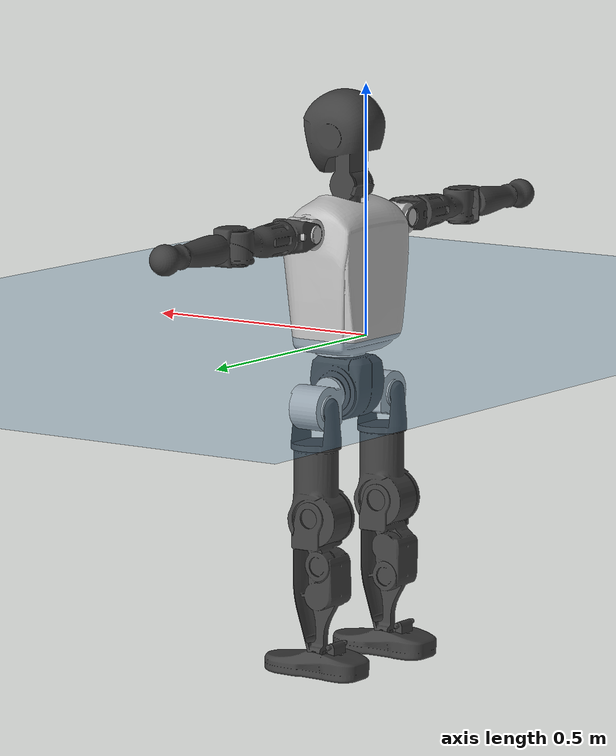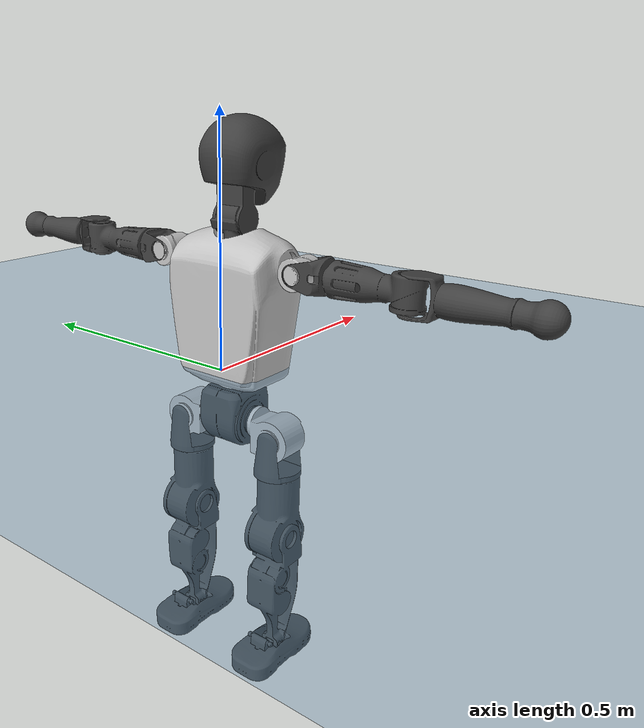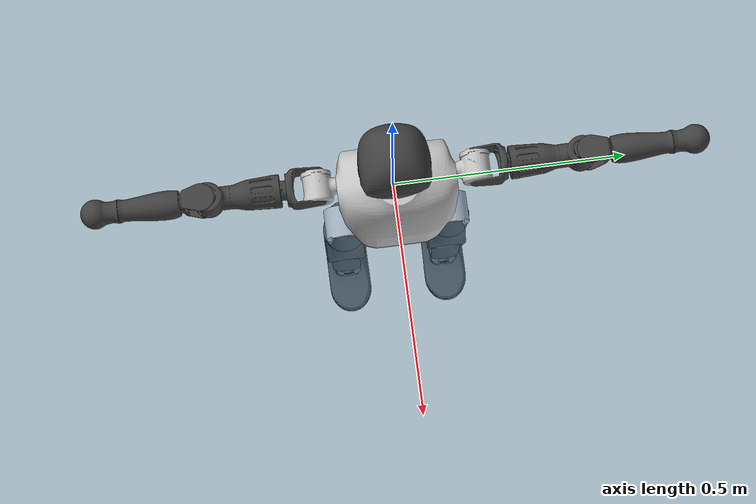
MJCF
<mujoco model="T1">
  <compiler angle="radian" assetdir="assets" balanceinertia="true" inertiafromgeom="false"/>

  <option timestep="0.005" density="1.2" viscosity="2e-05"/>

  <size nkey="1"/>

  <visual>
    <quality shadowsize="8192"/>
    <map shadowclip="0.5"/>
  </visual>

  <default>
    <default class="/">
      <joint armature="0.01" damping="0.01" frictionloss="0.1"/>
      <geom contype="0" conaffinity="0" group="1" solref="-1000 -80"/>
      <site size="0.01 0.005 0.005" group="5"/>
      <general forcelimited="true" biastype="affine" gainprm="25" biasprm="0 -25 -0.6"/>
      <default class="t1">
        <geom rgba="0.25 0.25 0.25 1"/>
        <default class="visual">
          <geom type="mesh" group="2"/>
        </default>
        <default class="collision">
          <geom group="3"/>
        </default>
        <default class="foot">
          <geom size="0.1115 0.05 0.015" type="box" condim="6" group="4" priority="1" solimp="0.015 1 0.015"/>
        </default>
        <default class="reward_collision_sphere">
          <geom group="5" rgba="1 0 0 1"/>
        </default>
      </default>
    </default>
  </default>

  <asset>
    <texture type="skybox" colorspace="auto" name="//unnamed_texture_0" builtin="gradient" rgb1="0.95 0.95 0.95" rgb2="0.95 0.95 0.95" width="100" height="600"/>
    <texture type="2d" colorspace="auto" name="texplane" builtin="checker" rgb1="0.345 0.575 0.748" rgb2="0.345 0.575 0.748" markrgb="1 1 1" width="512" height="512"/>
    <material name="MatPlane" class="/" texture="texplane" texuniform="true" texrepeat="2 2" specular="0.9"/>
    <mesh name="Trunk" class="/" file="Trunk.stl"/>
    <mesh name="H1" class="/" file="H1.stl"/>
    <mesh name="H2" class="/" file="H2.stl"/>
    <mesh name="AL1" class="/" file="AL1.stl"/>
    <mesh name="AL2" class="/" file="AL2.stl"/>
    <mesh name="AL3" class="/" file="AL3.stl"/>
    <mesh name="left_hand_link" class="/" file="left_hand_link.stl"/>
    <mesh name="AR1" class="/" file="AR1.stl"/>
    <mesh name="AR2" class="/" file="AR2.stl"/>
    <mesh name="AR3" class="/" file="AR3.stl"/>
    <mesh name="right_hand_link" class="/" file="right_hand_link.stl"/>
    <mesh name="Waist" class="/" file="Waist.stl"/>
    <mesh name="Hip_Pitch_Left" class="/" file="Hip_Pitch_Left.stl"/>
    <mesh name="Hip_Roll_Left" class="/" file="Hip_Roll_Left.stl"/>
    <mesh name="Hip_Yaw_Left" class="/" file="Hip_Yaw_Left.stl"/>
    <mesh name="Shank_Left" class="/" file="Shank_Left.stl"/>
    <mesh name="Ankle_Cross_Left" class="/" file="Ankle_Cross_Left.stl"/>
    <mesh name="left_foot_link" class="/" file="left_foot_link.stl"/>
    <mesh name="Hip_Pitch_Right" class="/" file="Hip_Pitch_Right.stl"/>
    <mesh name="Hip_Roll_Right" class="/" file="Hip_Roll_Right.stl"/>
    <mesh name="Hip_Yaw_Right" class="/" file="Hip_Yaw_Right.stl"/>
    <mesh name="Shank_Right" class="/" file="Shank_Right.stl"/>
    <mesh name="Ankle_Cross_Right" class="/" file="Ankle_Cross_Right.stl"/>
    <mesh name="right_foot_link" class="/" file="right_foot_link.stl"/>
  </asset>

  <worldbody>
    <geom name="floor" class="/" size="100 100 0.125" type="plane" group="0" material="MatPlane"/>
    <light name="toplight_shadow" class="/" pos="0 0 5" dir="0.0990148 0.0990148 -0.990148" type="directional" ambient="0.04 0.04 0.04" diffuse="0.55 0.55 0.55" specular="0.12 0.12 0.12"/>
    <light name="toplight_fill" class="/" pos="0 0 5" dir="0.0990148 0.0990148 -0.990148" type="directional" castshadow="false" ambient="0.04 0.04 0.04" diffuse="0.3 0.3 0.3" specular="0.08 0.08 0.08"/>
    <body name="trunk" childclass="t1" pos="-0.0020705 0.000997553 0.00131351" quat="1 4.60105e-05 -0.000318049 0.000372986">
      <inertial pos="0.03829 -0.00294107 0.105217" quat="0.999799 0.00283526 -0.0195221 -0.00365328" mass="9.94522" diaginertia="0.0161563 0.124438 0.0526986"/>
      <joint name="//unnamed_joint_0" type="free" armature="0" damping="0" frictionloss="0"/>
      <geom name="//unnamed_geom_1" class="visual" rgba="0.76 0.76 0.76 1" mesh="Trunk"/>
      <geom name="//unnamed_geom_2" class="collision" size="0.0697446 0.0929928 0.139489" pos="0.0421582 0 0.118018" type="box"/>
      <geom name="//unnamed_geom_3" class="reward_collision_sphere" size="0.106942" pos="0.0421582 0 0.0983484"/>
      <geom name="//unnamed_geom_4" class="reward_collision_sphere" size="0.0139489" pos="0.0421582 0.0938115 0"/>
      <geom name="//unnamed_geom_5" class="reward_collision_sphere" size="0.0139489" pos="0.0421582 -0.0938115 0"/>
      <geom name="//unnamed_geom_6" class="reward_collision_sphere" size="0.0139489" pos="0.0421582 0.118092 0.177027"/>
      <geom name="//unnamed_geom_7" class="reward_collision_sphere" size="0.0139489" pos="0.0421582 -0.118092 0.177027"/>
      <site name="imu" pos="-0.0029039 0.011129 0.00140429" size="0.00929928"/>
      <camera name="track" pos="0 -2.20733 0" quat="0.707107 0.707107 0 0" mode="trackcom"/>
      <camera name="ego_camera" pos="0.0857216 0 0.413063" quat="-0.5 -0.5 0.5 0.5"/>
      <body name="H1" pos="0.0425005 -0.00246816 0.236979" quat="1 0.000340708 -0.000506971 -0.000229715">
        <inertial pos="0.00054844 -0.00138537 0.0573299" quat="0.775598 -0.0225307 0.00757096 0.63078" mass="0.363958" diaginertia="4.39143e-05 0.000377791 0.000140636"/>
        <joint name="AAHead_yaw" pos="0 0 0" axis="0.00488077 0.0107458 0.99993" range="-1.57859 1.61685" armature="0.00982158" damping="0.0141767" frictionloss="0.0931341"/>
        <geom name="//unnamed_geom_8" class="visual" mesh="H1"/>
        <body name="H2" pos="-0.00181099 -0.00250579 0.0591427" quat="1 -0.000224528 0.000290052 -0.000781887">
          <inertial pos="0.00572788 0.00463376 0.0978888" quat="0.989504 0.0944462 -0.0728424 -0.0815862" mass="0.5124" diaginertia="0.000354352 0.00335088 0.00161167"/>
          <joint name="Head_pitch" pos="0 0 0" axis="-0.00200392 -0.999992 -0.00339318" range="-1.26761 0.381073" armature="0.0103731" damping="0.00111012" frictionloss="0.0824941"/>
          <geom name="//unnamed_geom_9" class="visual" mesh="H2"/>
          <geom name="//unnamed_geom_10" class="collision" size="0.0743943" pos="0.00702636 0 0.108183"/>
          <geom name="//unnamed_geom_11" class="reward_collision_sphere" size="0.0836935" pos="0.0140527 0 0.0983484"/>
        </body>
      </body>
      <body name="AL1" pos="0.0397227 0.116864 0.217896" quat="0.999999 -0.00118838 -0.000200767 0.000390628">
        <inertial pos="0.00111877 0.0519434 0.00337459" quat="0.496233 0.507357 -0.503158 0.493126" mass="0.399255" diaginertia="0.000219869 0.00195642 0.0002456"/>
        <joint name="Left_Shoulder_Pitch" pos="0 0 0" axis="0.000960133 0.999959 -0.00896814" stiffness="0.00855103" range="-3.31839 1.18023" armature="0.00800053" damping="0" frictionloss="0.102275"/>
        <geom name="//unnamed_geom_12" class="visual" rgba="0.76 0.76 0.76 1" mesh="AL1"/>
        <body name="AL2" pos="-0.00082731 0.0529328 0.00117571" quat="0.999997 -0.0017007 0.00151976 0.001132">
          <inertial pos="0.00357295 0.0462887 -0.000568103" quat="0.488277 0.510258 -0.488482 0.512453" mass="0.130971" diaginertia="6.79904e-05 0.000555101 0.000165179"/>
          <joint name="Left_Shoulder_Roll" pos="0 0 0" axis="-0.999784 -0.0179737 0.0104232" stiffness="0.0206723" range="-1.62429 1.6916" armature="0.00824258" damping="0.0263971" frictionloss="0.0821089"/>
          <geom name="//unnamed_geom_13" class="visual" mesh="AL2"/>
          <body name="AL3" pos="0.000489821 0.0627218 -0.00140754" quat="0.999999 0.000784307 0.000396373 0.00121955">
            <inertial pos="-5.71427e-05 0.0956338 -0.00261539" quat="0.707472 0.706722 0.00495739 -0.00174336" mass="0.758505" diaginertia="0.00215522 0.0201458 0.000588483"/>
            <joint name="Left_Elbow_Pitch" pos="0 0 0" axis="-0.00476158 -0.999987 -0.00187221" stiffness="0.00607014" range="-2.36116 2.34139" armature="0.00794567" damping="0.0189046" frictionloss="0.0905623"/>
            <geom name="//unnamed_geom_14" class="visual" mesh="AL3"/>
            <geom name="//unnamed_geom_15" class="collision" size="0.0278978 0.0697446" pos="0 0.0551832 0" quat="0.707105 0.707108 0 0" type="cylinder"/>
            <geom name="//unnamed_geom_16" class="reward_collision_sphere" size="0.0334774"/>
            <body name="left_hand_link" pos="0.00177277 0.163576 0.0034756" quat="1 6.2906e-05 0.000106353 -1.38947e-05">
              <inertial pos="-0.000252789 0.120154 0.00147042" quat="0.705084 0.709068 0.00309659 -0.00835601" mass="0.268431" diaginertia="0.00143465 0.0130134 0.000205139"/>
              <joint name="Left_Elbow_Yaw" pos="0 0 0" axis="0.00371741 -0.00393635 0.999985" range="-2.43664 -0.00549609" armature="0.00811465" damping="0.0117528" frictionloss="0.0975498"/>
              <geom name="//unnamed_geom_17" class="visual" mesh="left_hand_link"/>
              <geom name="//unnamed_geom_18" class="collision" size="0.0278978 0.0813687" pos="0 0.143476 0" quat="0.707105 0.707108 0 0" type="cylinder"/>
              <geom name="//unnamed_geom_19" class="reward_collision_sphere" size="0.0464964"/>
              <geom name="//unnamed_geom_20" class="reward_collision_sphere" size="0.0325475" pos="0 0.121403 0"/>
              <geom name="//unnamed_geom_21" class="reward_collision_sphere" size="0.0325475" pos="0 0.237288 0"/>
            </body>
          </body>
        </body>
      </body>
      <body name="AR1" pos="0.0403121 -0.113894 0.214043" quat="0.999999 -0.000288137 0.00102946 0.000290415">
        <inertial pos="-0.000888002 -0.0472821 -0.00267137" quat="0.503384 0.49588 -0.504421 0.496254" mass="0.425981" diaginertia="0.000243708 0.00213022 0.000275961"/>
        <joint name="Right_Shoulder_Pitch" pos="0 0 0" axis="0.00266602 -0.999986 -0.00463996" stiffness="0.00763435" range="-1.27611 3.31259" armature="0.00897478" damping="0.0182906" frictionloss="0.104644"/>
        <geom name="//unnamed_geom_22" class="visual" rgba="0.76 0.76 0.76 1" mesh="AR1"/>
        <body name="AR2" pos="-0.00291784 -0.0528951 0.0018685" quat="1 -0.000174107 2.58365e-06 -8.86687e-05">
          <inertial pos="0.00183165 -0.0421514 0.00330686" quat="0.51152 0.488505 -0.515558 0.483643" mass="0.135116" diaginertia="7.07356e-05 0.000606432 0.000171294"/>
          <joint name="Right_Shoulder_Roll" pos="0 0 0" axis="-0.999967 0.00192664 0.00787889" range="-1.78799 1.52849" armature="0.0090092" damping="0.0147695" frictionloss="0.0913669"/>
          <geom name="//unnamed_geom_23" class="visual" mesh="AR2"/>
          <body name="AR3" pos="-0.000399168 -0.0682291 -0.00128212" quat="1 0.000478006 0.000635182 -0.00032029">
            <inertial pos="0.0021826 -0.0954312 -0.00197403" quat="0.705614 0.708591 -0.000619076 -0.00293197" mass="0.855658" diaginertia="0.00229419 0.0215514 0.000597199"/>
            <joint name="Right_Elbow_Pitch" pos="0 0 0" axis="-0.00077982 0.999935 -0.0113583" range="-2.25789 2.27561" armature="0.00797442" damping="0.00645724" frictionloss="0.104695"/>
            <geom name="//unnamed_geom_24" class="visual" mesh="AR3"/>
            <geom name="//unnamed_geom_25" class="collision" size="0.0278978 0.0697446" pos="0 -0.0551832 0" quat="0.707105 0.707108 0 0" type="cylinder"/>
            <geom name="//unnamed_geom_26" class="reward_collision_sphere" size="0.0334774"/>
            <body name="right_hand_link" pos="-0.000498688 -0.160287 -0.00297395" quat="1 0.000133297 -0.000215506 -0.000292713">
              <inertial pos="-0.00225082 -0.12184 0.00460469" quat="0.697617 0.716338 0.013081 0.00449454" mass="0.245332" diaginertia="0.00143236 0.0132971 0.000198752"/>
              <joint name="Right_Elbow_Yaw" pos="0 0 0" axis="0.00232633 0.000148986 0.999997" stiffness="0.0138746" range="0.052926 2.36555" armature="0.00830557" damping="0" frictionloss="0.104977"/>
              <geom name="//unnamed_geom_27" class="visual" mesh="right_hand_link"/>
              <geom name="//unnamed_geom_28" class="collision" size="0.0278978 0.0813687" pos="0 -0.143476 0" quat="0.707105 0.707108 0 0" type="cylinder"/>
              <geom name="//unnamed_geom_29" class="reward_collision_sphere" size="0.0464964"/>
              <geom name="//unnamed_geom_30" class="reward_collision_sphere" size="0.0325475" pos="0 -0.121403 0"/>
              <geom name="//unnamed_geom_31" class="reward_collision_sphere" size="0.0325475" pos="0 -0.237288 0"/>
            </body>
          </body>
        </body>
      </body>
      <body name="Waist" pos="0.0460174 0.00104448 -0.11113" quat="1 -0.000849585 -0.000335031 0.00027776">
        <inertial pos="0.00495665 -0.000913531 0.00866001" quat="0.983325 0.00520063 -0.181645 0.00704395" mass="2.06939" diaginertia="0.000935497 0.00856432 0.00443066"/>
        <joint name="Waist" pos="0 0 0" axis="0.00878414 -0.00291087 0.999957" stiffness="0.025478" range="-1.56719 1.54811" armature="0.0102577" damping="0" frictionloss="0.10008"/>
        <geom name="//unnamed_geom_32" class="visual" mesh="Waist"/>
        <body name="Hip_Pitch_Left" pos="-0.00136003 0.114385 -0.00245843" quat="0.999999 6.94109e-05 -0.0011573 0.000709448">
          <inertial pos="-0.00300185 -0.00649504 -0.0156206" quat="0.973634 0.228043 -0.000429002 -0.00575558" mass="0.826594" diaginertia="0.000313564 0.00238287 0.00119023"/>
          <joint name="Left_Hip_Pitch" pos="0 0 0" axis="-0.0117121 0.999928 0.0025806" range="-1.78024 1.52157" armature="0.00860171" damping="0.0165174" frictionloss="0.0820301"/>
          <geom name="//unnamed_geom_33" class="visual" rgba="0.76 0.76 0.76 1" mesh="Hip_Pitch_Left"/>
          <body name="Hip_Roll_Left" pos="-0.00322348 0.00256832 -0.0223574" quat="0.999999 -0.00105111 -0.00027754 -0.000971492">
            <inertial pos="0.000424908 -0.00120844 -0.0525014" quat="0.707409 -0.00581266 -0.00590473 0.706756" mass="0.338964" diaginertia="0.000302171 0.00266357 0.000505365"/>
            <joint name="Left_Hip_Roll" pos="0 0 0" axis="-0.999959 -0.00396253 0.00814139" range="-1.55992 0.237666" armature="0.00950394" damping="0.0179106" frictionloss="0.0933806"/>
            <geom name="//unnamed_geom_34" class="visual" mesh="Hip_Roll_Left"/>
            <geom name="//unnamed_geom_35" class="reward_collision_sphere" size="0.051146"/>
            <body name="Hip_Yaw_Left" pos="-0.00149847 -0.000890349 -0.0815129" quat="1 -0.000205901 -9.26326e-05 0.00015564">
              <inertial pos="-0.00441779 0.000260074 -0.0897062" quat="0.691503 -0.0458002 -0.040607 0.719775" mass="1.72818" diaginertia="0.00432789 0.0417967 0.00227163"/>
              <joint name="Left_Hip_Yaw" pos="0 0 0" axis="0.0115097 -0.00608847 -0.999915" range="-0.976136 1.01968" armature="0.00859099" damping="0.0110341" frictionloss="0.0912338"/>
              <geom name="//unnamed_geom_36" class="visual" mesh="Hip_Yaw_Left"/>
              <geom name="//unnamed_geom_37" class="collision" size="0.0464964 0.0743943" type="cylinder"/>
              <body name="Shank_Left" pos="-0.00959363 -0.00247926 -0.130219" quat="1 9.79089e-05 0.000134669 -0.000844049">
                <inertial pos="-0.00152828 0.00389411 -0.122307" quat="0.997469 -0.00420232 -0.0317981 0.0634567" mass="1.377" diaginertia="0.00558039 0.0566418 0.00160987"/>
                <joint name="Left_Knee_Pitch" pos="0 0 0" axis="0.00670943 0.999977 0.00031415" range="0.0259033 2.3461" armature="0.0105352" damping="0.0151123" frictionloss="0.0699168"/>
                <geom name="//unnamed_geom_38" class="visual" mesh="Shank_Left"/>
                <geom name="//unnamed_geom_39" class="collision" size="0.0464964 0.0697446" pos="0 0 -0.118018" type="cylinder"/>
                <geom name="//unnamed_geom_40" class="reward_collision_sphere" size="0.0604453"/>
                <body name="Ankle_Cross_Left" pos="0.0027841 0.00247606 -0.275851" quat="1 0.000330793 0.00012488 -4.87243e-05">
                  <inertial pos="-0.00324582 -0.000790805 -0.00688587" quat="0.453051 0.54462 0.550344 0.441877" mass="0.06206" diaginertia="5.20335e-06 4.66431e-05 1.07848e-05"/>
                  <joint name="Left_Ankle_Pitch" pos="0 0 0" axis="-0.0015398 0.999831 -0.0183329" stiffness="0.0185301" range="-0.917782 0.296306" armature="0.00943322" damping="0.0121287" frictionloss="0.0851947"/>
                  <geom name="//unnamed_geom_41" class="visual" mesh="Ankle_Cross_Left"/>
                  <body name="left_foot_link" pos="-0.00167295 0.00102324 -0.0127117" quat="0.999998 0.00118803 -0.00109385 -0.00103175">
                    <inertial pos="-0.00293323 -0.000389958 -0.0110672" quat="-0.00106605 0.621859 -0.00546282 0.78311" mass="0.553384" diaginertia="0.000466863 0.00398832 0.00207336"/>
                    <joint name="Left_Ankle_Roll" pos="0 0 0" axis="-0.999851 -0.00749537 0.0155196" range="-0.417775 0.415744" armature="0.00927221" damping="0.00782756" frictionloss="0.103515"/>
                    <geom name="//unnamed_geom_42" class="visual" mesh="left_foot_link"/>
                    <geom name="left_foot" class="foot" size="0.0985843 0.0432638 0.0164199" pos="0.00702636 0 -0.0147523"/>
                    <geom name="//unnamed_geom_44" class="reward_collision_sphere" size="0.0483563" pos="0.00702636 0 -0.0147523"/>
                    <geom name="//unnamed_geom_45" class="reward_collision_sphere" size="0.0278978" pos="0.0667504 -0.0253843 -0.0147523"/>
                    <geom name="//unnamed_geom_46" class="reward_collision_sphere" size="0.0278978" pos="-0.0491845 -0.0253843 -0.0147523"/>
                    <site name="left_foot" class="foot" pos="0.00702636 0 -0.0147523" size="0.00929928"/>
                  </body>
                </body>
              </body>
            </body>
          </body>
        </body>
        <body name="Hip_Pitch_Right" pos="0.000596834 -0.11532 -0.00198152" quat="1 -2.57284e-05 -0.000100721 0.000154838">
          <inertial pos="-0.00070159 0.00570761 -0.0188518" quat="0.973754 -0.227035 0.0160536 -0.000413885" mass="0.799356" diaginertia="0.000317587 0.0024227 0.00111943"/>
          <joint name="Right_Hip_Pitch" pos="0 0 0" axis="0.00932589 -0.999877 0.0126041" range="-1.56257 1.77019" armature="0.00877687" damping="0.00804597" frictionloss="0.0920301"/>
          <geom name="//unnamed_geom_47" class="visual" rgba="0.76 0.76 0.76 1" mesh="Hip_Pitch_Right"/>
          <body name="Hip_Roll_Right" pos="-0.00191153 -0.00283372 -0.0211593" quat="1 0.000340659 -0.000128891 -4.81779e-05">
            <inertial pos="0.00271212 -0.00142209 -0.0519668" quat="0.70508 -0.00228508 -0.000532262 0.709124" mass="0.301371" diaginertia="0.000303041 0.00248307 0.000459543"/>
            <joint name="Right_Hip_Roll" pos="0 0 0" axis="-0.999989 -0.00376998 0.00280675" stiffness="0.00119087" range="-0.21833 1.51729" armature="0.00996861" damping="0.0116607" frictionloss="0.0865199"/>
            <geom name="//unnamed_geom_48" class="visual" mesh="Hip_Roll_Right"/>
            <geom name="//unnamed_geom_49" class="reward_collision_sphere" size="0.051146"/>
            <body name="Hip_Yaw_Right" pos="-0.000692545 -0.00221125 -0.0798414" quat="1 -0.00047656 -0.000161196 -8.5588e-05">
              <inertial pos="-0.00494601 0.00183436 -0.0911791" quat="0.721473 -0.0264586 -0.0382733 0.690877" mass="1.66382" diaginertia="0.00431833 0.0396964 0.00235964"/>
              <joint name="Right_Hip_Yaw" pos="0 0 0" axis="-0.0016789 -0.00179192 -0.999997" range="-1.05773 0.99281" armature="0.0109967" damping="0" frictionloss="0.0815904"/>
              <geom name="//unnamed_geom_50" class="visual" mesh="Hip_Yaw_Right"/>
              <geom name="//unnamed_geom_51" class="collision" size="0.0464964 0.0743943" type="cylinder"/>
              <body name="Shank_Right" pos="-0.0126993 -0.00253567 -0.133906" quat="1 -0.000130215 -0.000196629 0.000373146">
                <inertial pos="-0.00799217 -0.00499331 -0.118333" quat="0.9992 0.000406051 -0.0242484 -0.0318002" mass="1.36945" diaginertia="0.00538702 0.0529716 0.00169907"/>
                <joint name="Right_Knee_Pitch" pos="0 0 0" axis="-0.018312 -0.999832 -0.00014225" range="-2.34782 -0.0108609" armature="0.0104716" damping="0.0113679" frictionloss="0.100725"/>
                <geom name="//unnamed_geom_52" class="visual" mesh="Shank_Right"/>
                <geom name="//unnamed_geom_53" class="collision" size="0.0464964 0.0697446" pos="0 0 -0.118018" type="cylinder"/>
                <geom name="//unnamed_geom_54" class="reward_collision_sphere" size="0.0604453"/>
                <body name="Ankle_Cross_Right" pos="0.00112637 0.00219016 -0.274914" quat="0.999999 0.0007005 0.00109625 0.000183866">
                  <inertial pos="-0.000290841 0.00112682 -0.00700011" quat="0.440902 0.552303 0.555545 0.438105" mass="0.0592917" diaginertia="4.95269e-06 4.1683e-05 1.03257e-05"/>
                  <joint name="Right_Ankle_Pitch" pos="0 0 0" axis="0.00719483 -0.999723 -0.0223997" range="-0.398908 0.878108" armature="0.0104566" damping="0.0153905" frictionloss="0.10464"/>
                  <geom name="//unnamed_geom_55" class="visual" mesh="Ankle_Cross_Right"/>
                  <body name="right_foot_link" pos="-0.00167447 0.000800464 -0.0125049" quat="1 1.20668e-05 -0.000203896 -2.79616e-05">
                    <inertial pos="-0.00378677 0.000444077 -0.00850877" quat="0.00169841 0.622794 5.2167e-05 0.782384" mass="0.562964" diaginertia="0.000438004 0.0038811 0.00198423"/>
                    <joint name="Right_Ankle_Roll" pos="0 0 0" axis="-0.999982 0.00184244 0.00576063" range="-0.429751 0.394526" armature="0.0104061" damping="0.0100961" frictionloss="0.106531"/>
                    <geom name="//unnamed_geom_56" class="visual" mesh="right_foot_link"/>
                    <geom name="right_foot" class="foot" size="0.100685 0.0420551 0.0136714" pos="0.00702636 0 -0.0147523"/>
                    <geom name="//unnamed_geom_58" class="reward_collision_sphere" size="0.0371971"/>
                    <geom name="//unnamed_geom_59" class="reward_collision_sphere" size="0.0278978" pos="0.00702636 0 -0.0147523"/>
                    <geom name="//unnamed_geom_60" class="reward_collision_sphere" size="0.0278978" pos="0.0667504 0.0253843 -0.0147523"/>
                    <geom name="//unnamed_geom_61" class="reward_collision_sphere" size="0.0278978" pos="-0.0491845 0.0253843 -0.0147523"/>
                    <site name="right_foot" class="foot" pos="0.00702636 0 -0.0147523" size="0.00929928"/>
                  </body>
                </body>
              </body>
            </body>
          </body>
        </body>
      </body>
    </body>
  </worldbody>

  <contact>
    <pair class="/" geom1="floor" geom2="left_foot" name="//unnamed_contact_0"/>
    <pair class="/" geom1="floor" geom2="right_foot" name="//unnamed_contact_1"/>
  </contact>

  <actuator>
    <general name="AAHead_yaw" class="/" joint="AAHead_yaw" forcerange="-7.02203 7.02203" gainprm="21.6349" biasprm="0 -21.6349 -0.586177"/>
    <general name="Head_pitch" class="/" joint="Head_pitch" forcerange="-7.06847 7.06847" gainprm="21.6349" biasprm="0 -21.6349 -0.586177"/>
    <general name="Left_Shoulder_Pitch" class="/" joint="Left_Shoulder_Pitch" forcerange="-16.51 16.51" gainprm="21.6349" biasprm="0 -21.6349 -0.586177"/>
    <general name="Left_Shoulder_Roll" class="/" joint="Left_Shoulder_Roll" forcerange="-17.9146 17.9146" gainprm="21.6349" biasprm="0 -21.6349 -0.586177"/>
    <general name="Left_Elbow_Pitch" class="/" joint="Left_Elbow_Pitch" forcerange="-16.2823 16.2823" gainprm="21.6349" biasprm="0 -21.6349 -0.586177"/>
    <general name="Left_Elbow_Yaw" class="/" joint="Left_Elbow_Yaw" forcerange="-14.2898 14.2898" gainprm="21.6349" biasprm="0 -21.6349 -0.586177"/>
    <general name="Right_Shoulder_Pitch" class="/" joint="Right_Shoulder_Pitch" forcerange="-17.0247 17.0247" gainprm="21.6349" biasprm="0 -21.6349 -0.586177"/>
    <general name="Right_Shoulder_Roll" class="/" joint="Right_Shoulder_Roll" forcerange="-16.2409 16.2409" gainprm="21.6349" biasprm="0 -21.6349 -0.586177"/>
    <general name="Right_Elbow_Pitch" class="/" joint="Right_Elbow_Pitch" forcerange="-17.2108 17.2108" gainprm="21.6349" biasprm="0 -21.6349 -0.586177"/>
    <general name="Right_Elbow_Yaw" class="/" joint="Right_Elbow_Yaw" forcerange="-16.9708 16.9708" gainprm="21.6349" biasprm="0 -21.6349 -0.586177"/>
    <general name="Waist" class="/" joint="Waist" forcerange="-27.8529 27.8529" gainprm="21.6349" biasprm="0 -21.6349 -0.586177"/>
    <general name="Left_Hip_Pitch" class="/" joint="Left_Hip_Pitch" forcerange="-43.2722 43.2722" gainprm="21.6349" biasprm="0 -21.6349 -0.586177"/>
    <general name="Left_Hip_Roll" class="/" joint="Left_Hip_Roll" forcerange="-25.7563 25.7563" gainprm="21.6349" biasprm="0 -21.6349 -0.586177"/>
    <general name="Left_Hip_Yaw" class="/" joint="Left_Hip_Yaw" forcerange="-30.5491 30.5491" gainprm="21.6349" biasprm="0 -21.6349 -0.586177"/>
    <general name="Left_Knee_Pitch" class="/" joint="Left_Knee_Pitch" forcerange="-54.562 54.562" gainprm="21.6349" biasprm="0 -21.6349 -0.586177"/>
    <general name="Left_Ankle_Pitch" class="/" joint="Left_Ankle_Pitch" forcerange="-20.4195 20.4195" gainprm="21.6349" biasprm="0 -21.6349 -0.586177"/>
    <general name="Left_Ankle_Roll" class="/" joint="Left_Ankle_Roll" forcerange="-14.088 14.088" gainprm="21.6349" biasprm="0 -21.6349 -0.586177"/>
    <general name="Right_Hip_Pitch" class="/" joint="Right_Hip_Pitch" forcerange="-40.52 40.52" gainprm="21.6349" biasprm="0 -21.6349 -0.586177"/>
    <general name="Right_Hip_Roll" class="/" joint="Right_Hip_Roll" forcerange="-27.3359 27.3359" gainprm="21.6349" biasprm="0 -21.6349 -0.586177"/>
    <general name="Right_Hip_Yaw" class="/" joint="Right_Hip_Yaw" forcerange="-28.3063 28.3063" gainprm="21.6349" biasprm="0 -21.6349 -0.586177"/>
    <general name="Right_Knee_Pitch" class="/" joint="Right_Knee_Pitch" forcerange="-52.384 52.384" gainprm="21.6349" biasprm="0 -21.6349 -0.586177"/>
    <general name="Right_Ankle_Pitch" class="/" joint="Right_Ankle_Pitch" forcerange="-19.0871 19.0871" gainprm="21.6349" biasprm="0 -21.6349 -0.586177"/>
    <general name="Right_Ankle_Roll" class="/" joint="Right_Ankle_Roll" forcerange="-14.3995 14.3995" gainprm="21.6349" biasprm="0 -21.6349 -0.586177"/>
  </actuator>

  <sensor>
    <gyro site="imu" name="imu_angular_velocity"/>
    <velocimeter site="imu" name="imu_linear_velocity"/>
    <framelinvel objtype="site" objname="left_foot" name="left_foot_global_linear_velocity"/>
    <framelinvel objtype="site" objname="right_foot" name="right_foot_global_linear_velocity"/>
  </sensor>

  <keyframe>
    <key name="home" qpos="0 0 0.6385 1 0 0 0 0 0 0 1.4 0 -0.4 0 -1.4 0 0.4 0 -0.4 0 0 0.8 -0.4 0 0.4 0 0 -0.8 0.4 0"/>
  </keyframe>
</mujoco>
